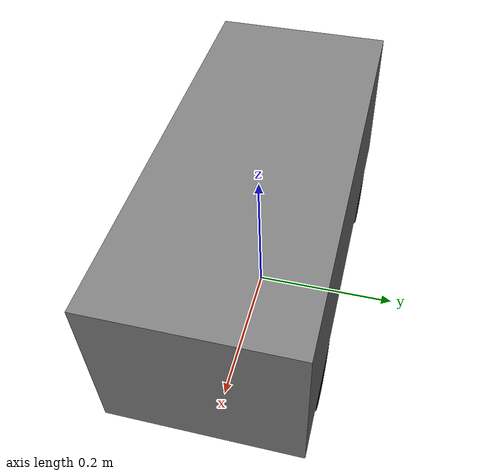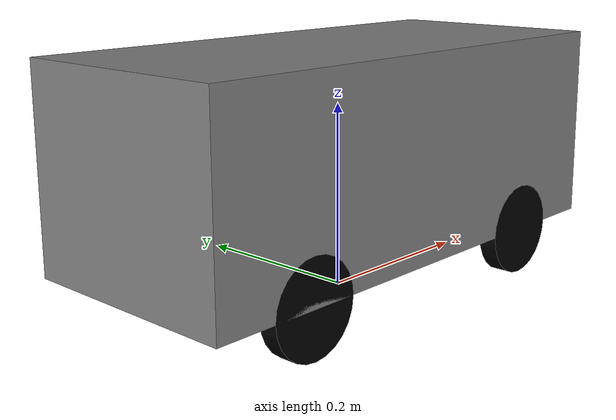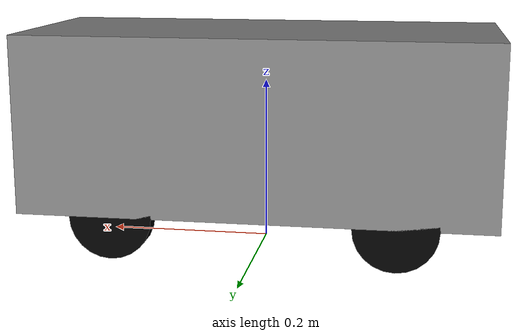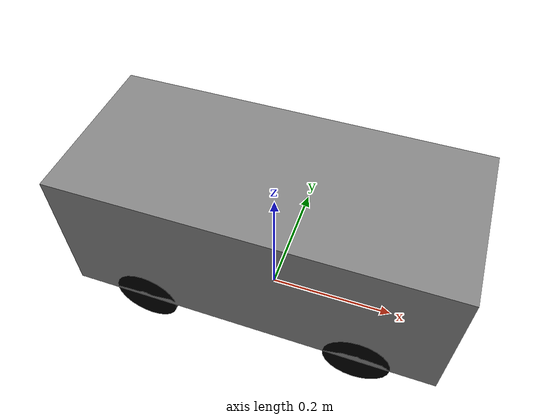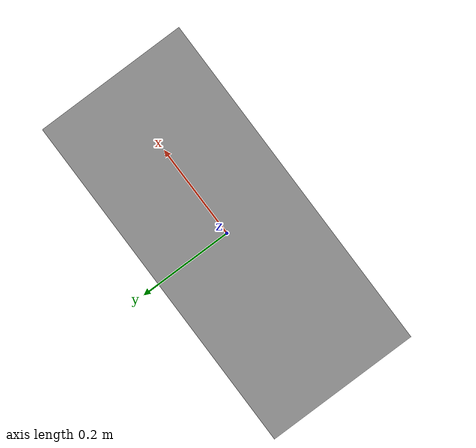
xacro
<?xml version="1.0"?>
<robot xmlns:xacro="http://ros.org/wiki/xacro" name="simple_vehicle">

  <!-- 기본 파라미터 -->
  <xacro:property name="wheel_radius" value="0.05"/>      <!-- 50 mm -->
  <xacro:property name="wheel_width" value="0.02"/>       <!-- 20 mm -->
  <xacro:property name="wheelbase" value="0.335"/>        <!-- 335 mm -->
  <xacro:property name="vehicle_length" value="0.567"/>   <!-- 567 mm -->
  <xacro:property name="vehicle_height" value="0.214"/>   <!-- 214 mm -->
  <xacro:property name="vehicle_width" value="0.25"/>     <!-- 250 mm -->

  <!-- 재질 정의 -->
  <material name="gray">
    <color rgba="0.5 0.5 0.5 1.0"/>
  </material>
  <material name="black">
    <color rgba="0 0 0 1"/>
  </material>

  <!-- 차체 링크 -->
  <link name="base_link">
    <visual>
      <origin xyz="0 0 ${wheel_radius + vehicle_height/2.0}" rpy="0 0 0"/>
      <geometry>
        <box size="${vehicle_length} ${vehicle_width} ${vehicle_height}"/>
      </geometry>
      <material name="gray"/>
    </visual>
    <collision>
      <origin xyz="0 0 ${wheel_radius + vehicle_height/2.0}" rpy="0 0 0"/>
      <geometry>
        <box size="${vehicle_length} ${vehicle_width} ${vehicle_height}"/>
      </geometry>
    </collision>
    <inertial>
      <mass value="10.0"/>
      <origin xyz="0 0 ${wheel_radius + vehicle_height/2.0}" rpy="0 0 0"/>
      <inertia ixx="0.1" ixy="0" ixz="0" iyy="0.1" iyz="0" izz="0.1"/>
    </inertial>
  </link>

  <!-- 휠 위치 계산 -->
  <xacro:property name="wheel_x_offset" value="${wheelbase/2.0}"/>
  <xacro:property name="wheel_y_offset" value="${vehicle_width/2.0 - wheel_width/2.0}"/>

  <!-- 바퀴 매크로 정의 -->
  <xacro:macro name="wheel" params="name x y">
    <link name="${name}">
      <visual>
        <origin xyz="0 0 0" rpy="1.5708 0 0"/>
        <geometry>
          <cylinder radius="${wheel_radius}" length="${wheel_width}"/>
        </geometry>
        <material name="black"/>
      </visual>
      <collision>
        <origin xyz="0 0 0" rpy="1.5708 0 0"/>
        <geometry>
          <cylinder radius="${wheel_radius}" length="${wheel_width}"/>
        </geometry>
      </collision>
      <inertial>
        <mass value="1.0"/>
        <origin xyz="0 0 0" rpy="0 0 0"/>
        <inertia ixx="0.01" ixy="0" ixz="0" iyy="0.01" iyz="0" izz="0.01"/>
      </inertial>
    </link>
    <joint name="${name}_joint" type="continuous">
      <origin xyz="${x} ${y} ${wheel_radius}" rpy="0 0 0"/>
      <parent link="base_link"/>
      <child link="${name}"/>
      <axis xyz="0 1 0"/>
    </joint>
    <!-- Differential drive transmission -->
    <transmission name="${name}_trans">
      <type>transmission_interface/SimpleTransmission</type>
      <joint name="${name}_joint">
        <hardwareInterface>PositionJointInterface</hardwareInterface>
      </joint>
      <actuator name="${name}_motor">
        <hardwareInterface>PositionJointInterface</hardwareInterface>
        <mechanicalReduction>1</mechanicalReduction>
      </actuator>
    </transmission>
  </xacro:macro>

  <!-- 4개 바퀴 생성 -->
  <xacro:wheel name="front_left_wheel"  x="${wheel_x_offset}"  y="${wheel_y_offset}"/>
  <xacro:wheel name="front_right_wheel" x="${wheel_x_offset}"  y="-${wheel_y_offset}"/>
  <xacro:wheel name="rear_left_wheel"   x="-${wheel_x_offset}" y="${wheel_y_offset}"/>
  <xacro:wheel name="rear_right_wheel"  x="-${wheel_x_offset}" y="-${wheel_y_offset}"/>

  <!-- Gazebo ros control plugin for differential drive -->
  <gazebo>
    <plugin name="gazebo_ros_control" filename="libgazebo_ros_control.so"/>
  </gazebo>

  <gazebo>
    <plugin name="diff_drive_controller" filename="libgazebo_ros_diff_drive.so">
      <ros2ControlPlugin>diff_drive_controller/DiffDriveController</ros2ControlPlugin>
      <left_joint>rear_left_wheel_joint</left_joint>
      <right_joint>rear_right_wheel_joint</right_joint>
      <wheel_separation>${vehicle_width - 2.0*wheel_radius}</wheel_separation>
      <wheel_diameter>${2.0*wheel_radius}</wheel_diameter>
      <topic_name>cmd_vel</topic_name>
      <update_rate>100</update_rate>
    </plugin>
  </gazebo>

</robot>
